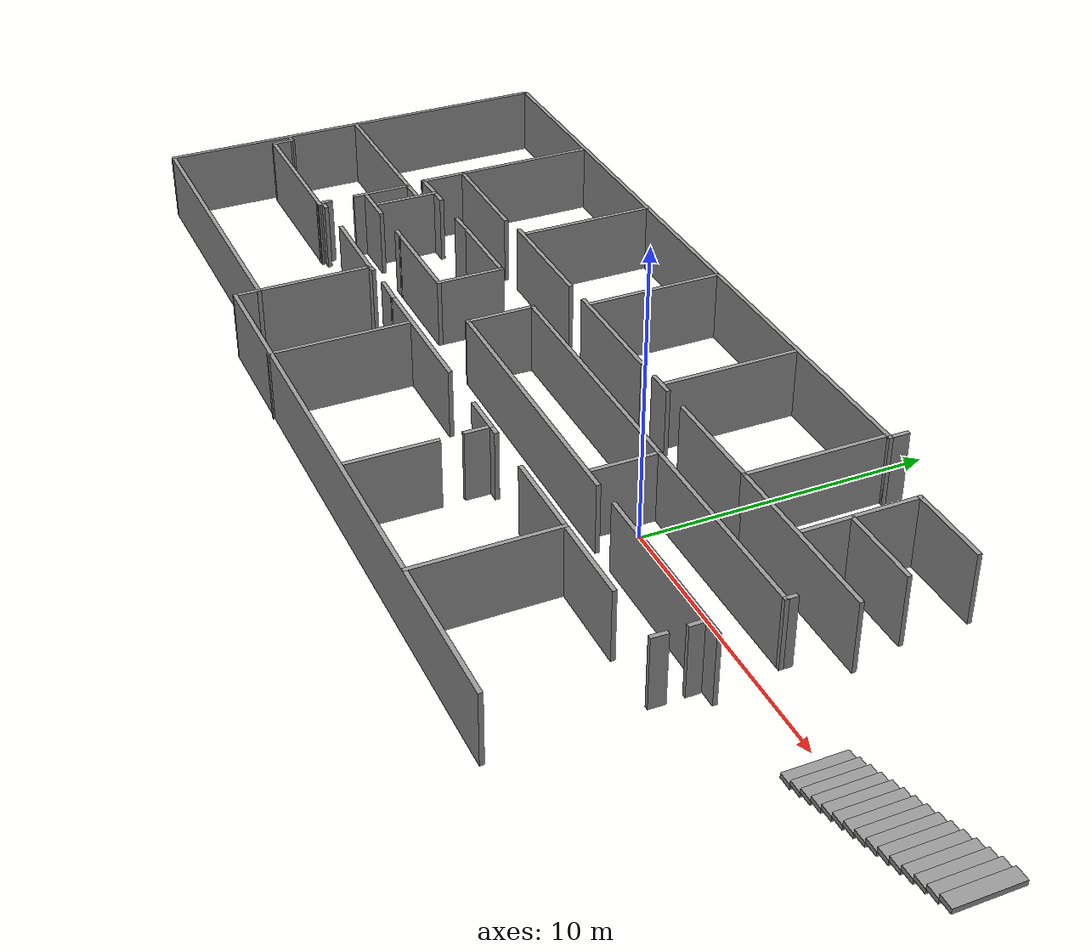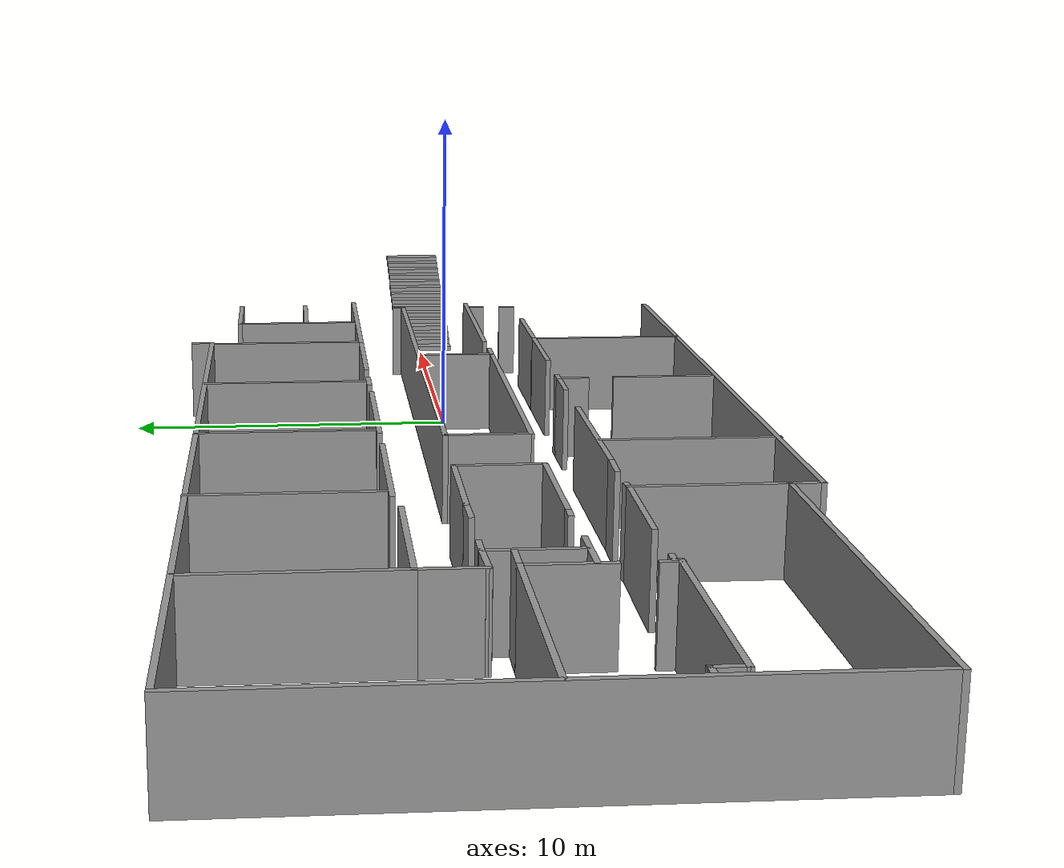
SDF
<sdf version="1.7">
 <model name="5OG_waende">
  <pose>-0.119199 0.062198 0 0 -0 0</pose>
  <link name="Stairs_1">
   <visual name="Stairs_1_Visual_0">
    <pose>10.7982 -0.241611 0.083333 0 -0 1.5708</pose>
    <geometry><box><size>2.07123 0.478437 0.166667</size></box></geometry>
    <material>
     <script><uri>file://media/materials/scripts/gazebo.material</uri><name>Gazebo/Grey</name></script>
     <ambient>1 1 1 1</ambient>
    </material>
    <meta><layer>0</layer></meta>
   </visual>
   <collision name="Stairs_1_Collision_0">
    <geometry><box><size>2.07123 0.478437 0.166667</size></box></geometry>
    <pose>10.7982 -0.241611 0.083333 0 -0 1.5708</pose>
   </collision>
   <visual name="Stairs_1_Visual_1">
    <pose>11.2766 -0.241611 0.25 0 -0 1.5708</pose>
    <geometry><box><size>2.07123 0.478437 0.166667</size></box></geometry>
    <material>
     <script><uri>file://media/materials/scripts/gazebo.material</uri><name>Gazebo/Grey</name></script>
     <ambient>1 1 1 1</ambient>
    </material>
    <meta><layer>0</layer></meta>
   </visual>
   <collision name="Stairs_1_Collision_1">
    <geometry><box><size>2.07123 0.478437 0.166667</size></box></geometry>
    <pose>11.2766 -0.241611 0.25 0 -0 1.5708</pose>
   </collision>
   <visual name="Stairs_1_Visual_2">
    <pose>11.7551 -0.241611 0.416667 0 -0 1.5708</pose>
    <geometry><box><size>2.07123 0.478437 0.166667</size></box></geometry>
    <material>
     <script><uri>file://media/materials/scripts/gazebo.material</uri><name>Gazebo/Grey</name></script>
     <ambient>1 1 1 1</ambient>
    </material>
    <meta><layer>0</layer></meta>
   </visual>
   <collision name="Stairs_1_Collision_2">
    <geometry><box><size>2.07123 0.478437 0.166667</size></box></geometry>
    <pose>11.7551 -0.241611 0.416667 0 -0 1.5708</pose>
   </collision>
   <visual name="Stairs_1_Visual_3">
    <pose>12.2335 -0.241611 0.583333 0 -0 1.5708</pose>
    <geometry><box><size>2.07123 0.478437 0.166667</size></box></geometry>
    <material>
     <script><uri>file://media/materials/scripts/gazebo.material</uri><name>Gazebo/Grey</name></script>
     <ambient>1 1 1 1</ambient>
    </material>
    <meta><layer>0</layer></meta>
   </visual>
   <collision name="Stairs_1_Collision_3">
    <geometry><box><size>2.07123 0.478437 0.166667</size></box></geometry>
    <pose>12.2335 -0.241611 0.583333 0 -0 1.5708</pose>
   </collision>
   <visual name="Stairs_1_Visual_4">
    <pose>12.7119 -0.241611 0.75 0 -0 1.5708</pose>
    <geometry><box><size>2.07123 0.478437 0.166667</size></box></geometry>
    <material>
     <script><uri>file://media/materials/scripts/gazebo.material</uri><name>Gazebo/Grey</name></script>
     <ambient>1 1 1 1</ambient>
    </material>
    <meta><layer>0</layer></meta>
   </visual>
   <collision name="Stairs_1_Collision_4">
    <geometry><box><size>2.07123 0.478437 0.166667</size></box></geometry>
    <pose>12.7119 -0.241611 0.75 0 -0 1.5708</pose>
   </collision>
   <visual name="Stairs_1_Visual_5">
    <pose>13.1904 -0.241611 0.916667 0 -0 1.5708</pose>
    <geometry><box><size>2.07123 0.478437 0.166667</size></box></geometry>
    <material>
     <script><uri>file://media/materials/scripts/gazebo.material</uri><name>Gazebo/Grey</name></script>
     <ambient>1 1 1 1</ambient>
    </material>
    <meta><layer>0</layer></meta>
   </visual>
   <collision name="Stairs_1_Collision_5">
    <geometry><box><size>2.07123 0.478437 0.166667</size></box></geometry>
    <pose>13.1904 -0.241611 0.916667 0 -0 1.5708</pose>
   </collision>
   <visual name="Stairs_1_Visual_6">
    <pose>13.6688 -0.24161 1.08333 0 -0 1.5708</pose>
    <geometry><box><size>2.07123 0.478437 0.166667</size></box></geometry>
    <material>
     <script><uri>file://media/materials/scripts/gazebo.material</uri><name>Gazebo/Grey</name></script>
     <ambient>1 1 1 1</ambient>
    </material>
    <meta><layer>0</layer></meta>
   </visual>
   <collision name="Stairs_1_Collision_6">
    <geometry><box><size>2.07123 0.478437 0.166667</size></box></geometry>
    <pose>13.6688 -0.24161 1.08333 0 -0 1.5708</pose>
   </collision>
   <visual name="Stairs_1_Visual_7">
    <pose>14.1472 -0.24161 1.25 0 -0 1.5708</pose>
    <geometry><box><size>2.07123 0.478437 0.166667</size></box></geometry>
    <material>
     <script><uri>file://media/materials/scripts/gazebo.material</uri><name>Gazebo/Grey</name></script>
     <ambient>1 1 1 1</ambient>
    </material>
    <meta><layer>0</layer></meta>
   </visual>
   <collision name="Stairs_1_Collision_7">
    <geometry><box><size>2.07123 0.478437 0.166667</size></box></geometry>
    <pose>14.1472 -0.24161 1.25 0 -0 1.5708</pose>
   </collision>
   <visual name="Stairs_1_Visual_8">
    <pose>14.6257 -0.24161 1.41667 0 -0 1.5708</pose>
    <geometry><box><size>2.07123 0.478437 0.166667</size></box></geometry>
    <material>
     <script><uri>file://media/materials/scripts/gazebo.material</uri><name>Gazebo/Grey</name></script>
     <ambient>1 1 1 1</ambient>
    </material>
    <meta><layer>0</layer></meta>
   </visual>
   <collision name="Stairs_1_Collision_8">
    <geometry><box><size>2.07123 0.478437 0.166667</size></box></geometry>
    <pose>14.6257 -0.24161 1.41667 0 -0 1.5708</pose>
   </collision>
   <visual name="Stairs_1_Visual_9">
    <pose>15.1041 -0.24161 1.58333 0 -0 1.5708</pose>
    <geometry><box><size>2.07123 0.478437 0.166667</size></box></geometry>
    <material>
     <script><uri>file://media/materials/scripts/gazebo.material</uri><name>Gazebo/Grey</name></script>
     <ambient>1 1 1 1</ambient>
    </material>
    <meta><layer>0</layer></meta>
   </visual>
   <collision name="Stairs_1_Collision_9">
    <geometry><box><size>2.07123 0.478437 0.166667</size></box></geometry>
    <pose>15.1041 -0.24161 1.58333 0 -0 1.5708</pose>
   </collision>
   <visual name="Stairs_1_Visual_10">
    <pose>15.5826 -0.24161 1.75 0 -0 1.5708</pose>
    <geometry><box><size>2.07123 0.478437 0.166667</size></box></geometry>
    <material>
     <script><uri>file://media/materials/scripts/gazebo.material</uri><name>Gazebo/Grey</name></script>
     <ambient>1 1 1 1</ambient>
    </material>
    <meta><layer>0</layer></meta>
   </visual>
   <collision name="Stairs_1_Collision_10">
    <geometry><box><size>2.07123 0.478437 0.166667</size></box></geometry>
    <pose>15.5826 -0.24161 1.75 0 -0 1.5708</pose>
   </collision>
   <visual name="Stairs_1_Visual_11">
    <pose>16.061 -0.24161 1.91667 0 -0 1.5708</pose>
    <geometry><box><size>2.07123 0.478437 0.166667</size></box></geometry>
    <material>
     <script><uri>file://media/materials/scripts/gazebo.material</uri><name>Gazebo/Grey</name></script>
     <ambient>1 1 1 1</ambient>
    </material>
    <meta><layer>0</layer></meta>
   </visual>
   <collision name="Stairs_1_Collision_11">
    <geometry><box><size>2.07123 0.478437 0.166667</size></box></geometry>
    <pose>16.061 -0.24161 1.91667 0 -0 1.5708</pose>
   </collision>
   <visual name="Stairs_1_Visual_12">
    <pose>16.5394 -0.24161 2.08333 0 -0 1.5708</pose>
    <geometry><box><size>2.07123 0.478437 0.166667</size></box></geometry>
    <material>
     <script><uri>file://media/materials/scripts/gazebo.material</uri><name>Gazebo/Grey</name></script>
     <ambient>1 1 1 1</ambient>
    </material>
    <meta><layer>0</layer></meta>
   </visual>
   <collision name="Stairs_1_Collision_12">
    <geometry><box><size>2.07123 0.478437 0.166667</size></box></geometry>
    <pose>16.5394 -0.24161 2.08333 0 -0 1.5708</pose>
   </collision>
   <visual name="Stairs_1_Visual_13">
    <pose>17.0179 -0.24161 2.25 0 -0 1.5708</pose>
    <geometry><box><size>2.07123 0.478437 0.166667</size></box></geometry>
    <material>
     <script><uri>file://media/materials/scripts/gazebo.material</uri><name>Gazebo/Grey</name></script>
     <ambient>1 1 1 1</ambient>
    </material>
    <meta><layer>0</layer></meta>
   </visual>
   <collision name="Stairs_1_Collision_13">
    <geometry><box><size>2.07123 0.478437 0.166667</size></box></geometry>
    <pose>17.0179 -0.24161 2.25 0 -0 1.5708</pose>
   </collision>
   <visual name="Stairs_1_Visual_14">
    <pose>17.4963 -0.24161 2.41667 0 -0 1.5708</pose>
    <geometry><box><size>2.07123 0.478437 0.166667</size></box></geometry>
    <material>
     <script><uri>file://media/materials/scripts/gazebo.material</uri><name>Gazebo/Grey</name></script>
     <ambient>1 1 1 1</ambient>
    </material>
    <meta><layer>0</layer></meta>
   </visual>
   <collision name="Stairs_1_Collision_14">
    <geometry><box><size>2.07123 0.478437 0.166667</size></box></geometry>
    <pose>17.4963 -0.24161 2.41667 0 -0 1.5708</pose>
   </collision>
  </link>
  <link name="Wall_0">
   <collision name="Wall_0_Collision">
    <geometry><box><size>5 0.15 2.5</size></box></geometry>
    <pose>0 0 1.25 0 -0 0</pose>
   </collision>
   <visual name="Wall_0_Visual">
    <pose>0 0 1.25 0 -0 0</pose>
    <geometry><box><size>5 0.15 2.5</size></box></geometry>
    <material>
     <script><uri>file://media/materials/scripts/gazebo.material</uri><name>Gazebo/Grey</name></script>
     <ambient>1 1 1 1</ambient>
    </material>
    <meta><layer>0</layer></meta>
   </visual>
   <pose>-14.6424 -5.68764 0 0 -0 -1.5708</pose>
  </link>
  <link name="Wall_1">
   <collision name="Wall_1_Collision">
    <geometry><box><size>21.75 0.15 2.5</size></box></geometry>
    <pose>0 0 1.25 0 -0 0</pose>
   </collision>
   <visual name="Wall_1_Visual">
    <pose>0 0 1.25 0 -0 0</pose>
    <geometry><box><size>21.75 0.15 2.5</size></box></geometry>
    <material>
     <script><uri>file://media/materials/scripts/gazebo.material</uri><name>Gazebo/Grey</name></script>
     <ambient>1 1 1 1</ambient>
    </material>
    <meta><layer>0</layer></meta>
   </visual>
   <pose>-3.84243 -8.11264 0 0 -0 0</pose>
  </link>
  <link name="Wall_100">
   <collision name="Wall_100_Collision">
    <geometry><box><size>5 0.15 2.5</size></box></geometry>
    <pose>0 0 1.25 0 -0 0</pose>
   </collision>
   <visual name="Wall_100_Visual">
    <pose>0 0 1.25 0 -0 0</pose>
    <geometry><box><size>5 0.15 2.5</size></box></geometry>
    <material>
     <script><uri>file://media/materials/scripts/gazebo.material</uri><name>Gazebo/Grey</name></script>
     <ambient>1 1 1 1</ambient>
    </material>
    <meta><layer>0</layer></meta>
   </visual>
   <pose>-14.6211 5.15402 0 0 -0 -1.5708</pose>
  </link>
  <link name="Wall_102">
   <collision name="Wall_102_Collision">
    <geometry><box><size>5 0.15 2.5</size></box></geometry>
    <pose>0 0 1.25 0 -0 0</pose>
   </collision>
   <visual name="Wall_102_Visual">
    <pose>0 0 1.25 0 -0 0</pose>
    <geometry><box><size>5 0.15 2.5</size></box></geometry>
    <material>
     <script><uri>file://media/materials/scripts/gazebo.material</uri><name>Gazebo/Grey</name></script>
     <ambient>1 1 1 1</ambient>
    </material>
    <meta><layer>0</layer></meta>
   </visual>
   <pose>-9.21664 5.13653 0 0 -0 -1.5708</pose>
  </link>
  <link name="Wall_104">
   <collision name="Wall_104_Collision">
    <geometry><box><size>5 0.15 2.5</size></box></geometry>
    <pose>0 0 1.25 0 -0 0</pose>
   </collision>
   <visual name="Wall_104_Visual">
    <pose>0 0 1.25 0 -0 0</pose>
    <geometry><box><size>5 0.15 2.5</size></box></geometry>
    <material>
     <script><uri>file://media/materials/scripts/gazebo.material</uri><name>Gazebo/Grey</name></script>
     <ambient>1 1 1 1</ambient>
    </material>
    <meta><layer>0</layer></meta>
   </visual>
   <pose>-3.81222 5.10155 0 0 -0 -1.5708</pose>
  </link>
  <link name="Wall_106">
   <collision name="Wall_106_Collision">
    <geometry><box><size>3.25 0.15 2.5</size></box></geometry>
    <pose>0 0 1.25 0 -0 0</pose>
   </collision>
   <visual name="Wall_106_Visual">
    <pose>0 0 1.25 0 -0 0</pose>
    <geometry><box><size>3.25 0.15 2.5</size></box></geometry>
    <material>
     <script><uri>file://media/materials/scripts/gazebo.material</uri><name>Gazebo/Grey</name></script>
     <ambient>1 1 1 1</ambient>
    </material>
    <meta><layer>0</layer></meta>
   </visual>
   <pose>-14.1887 0.863741 0 0 -0 0</pose>
  </link>
  <link name="Wall_107">
   <collision name="Wall_107_Collision">
    <geometry><box><size>2.5 0.15 2.5</size></box></geometry>
    <pose>0 0 1.25 0 -0 0</pose>
   </collision>
   <visual name="Wall_107_Visual">
    <pose>0 0 1.25 0 -0 0</pose>
    <geometry><box><size>2.5 0.15 2.5</size></box></geometry>
    <material>
     <script><uri>file://media/materials/scripts/gazebo.material</uri><name>Gazebo/Grey</name></script>
     <ambient>1 1 1 1</ambient>
    </material>
    <meta><layer>0</layer></meta>
   </visual>
   <pose>-12.6387 -0.311259 0 0 -0 -1.5708</pose>
  </link>
  <link name="Wall_108">
   <collision name="Wall_108_Collision">
    <geometry><box><size>3.75 0.15 2.5</size></box></geometry>
    <pose>0 0 1.25 0 -0 0</pose>
   </collision>
   <visual name="Wall_108_Visual">
    <pose>0 0 1.25 0 -0 0</pose>
    <geometry><box><size>3.75 0.15 2.5</size></box></geometry>
    <material>
     <script><uri>file://media/materials/scripts/gazebo.material</uri><name>Gazebo/Grey</name></script>
     <ambient>1 1 1 1</ambient>
    </material>
    <meta><layer>0</layer></meta>
   </visual>
   <pose>-14.4387 -1.48626 0 0 -0 3.14159</pose>
  </link>
  <link name="Wall_110">
   <collision name="Wall_110_Collision">
    <geometry><box><size>3.28022 0.15 2.5</size></box></geometry>
    <pose>0 0 1.25 0 -0 0</pose>
   </collision>
   <visual name="Wall_110_Visual">
    <pose>0 0 1.25 0 -0 0</pose>
    <geometry><box><size>3.28022 0.15 2.5</size></box></geometry>
    <material>
     <script><uri>file://media/materials/scripts/gazebo.material</uri><name>Gazebo/Grey</name></script>
     <ambient>1 1 1 1</ambient>
    </material>
    <meta><layer>0</layer></meta>
   </visual>
   <pose>-16.2074 -3.23981 0 0 -0 -0.014586</pose>
  </link>
  <link name="Wall_112">
   <collision name="Wall_112_Collision">
    <geometry><box><size>1.17054 0.15 2.5</size></box></geometry>
    <pose>0 0 1.25 0 -0 0</pose>
   </collision>
   <visual name="Wall_112_Visual">
    <pose>0 0 1.25 0 -0 0</pose>
    <geometry><box><size>1.17054 0.15 2.5</size></box></geometry>
    <material>
     <script><uri>file://media/materials/scripts/gazebo.material</uri><name>Gazebo/Grey</name></script>
     <ambient>1 1 1 1</ambient>
    </material>
    <meta><layer>0</layer></meta>
   </visual>
   <pose>-12.8612 -3.2242 0 0 -0 -0.031116</pose>
  </link>
  <link name="Wall_114">
   <collision name="Wall_114_Collision">
    <geometry><box><size>0.382389 0.15 2.5</size></box></geometry>
    <pose>0 0 1.25 0 -0 0</pose>
   </collision>
   <visual name="Wall_114_Visual">
    <pose>0 0 1.25 0 -0 0</pose>
    <geometry><box><size>0.382389 0.15 2.5</size></box></geometry>
    <material>
     <script><uri>file://media/materials/scripts/gazebo.material</uri><name>Gazebo/Grey</name></script>
     <ambient>1 1 1 1</ambient>
    </material>
    <meta><layer>0</layer></meta>
   </visual>
   <pose>-14.5273 -3.24705 0 0 -0 -3.007</pose>
  </link>
  <link name="Wall_120">
   <collision name="Wall_120_Collision">
    <geometry><box><size>0.5 0.15 2.5</size></box></geometry>
    <pose>0 0 1.25 0 -0 0</pose>
   </collision>
   <visual name="Wall_120_Visual">
    <pose>0 0 1.25 0 -0 0</pose>
    <geometry><box><size>0.5 0.15 2.5</size></box></geometry>
    <material>
     <script><uri>file://media/materials/scripts/gazebo.material</uri><name>Gazebo/Grey</name></script>
     <ambient>1 1 1 1</ambient>
    </material>
    <meta><layer>0</layer></meta>
   </visual>
   <pose>-25.5475 -2.63736 0 0 -0 0</pose>
  </link>
  <link name="Wall_121">
   <collision name="Wall_121_Collision">
    <geometry><box><size>0.880662 0.15 2.5</size></box></geometry>
    <pose>0 0 1.25 0 -0 0</pose>
   </collision>
   <visual name="Wall_121_Visual">
    <pose>0 0 1.25 0 -0 0</pose>
    <geometry><box><size>0.880662 0.15 2.5</size></box></geometry>
    <material>
     <script><uri>file://media/materials/scripts/gazebo.material</uri><name>Gazebo/Grey</name></script>
     <ambient>1 1 1 1</ambient>
    </material>
    <meta><layer>0</layer></meta>
   </visual>
   <pose>-25.3726 -3.00237 0 0 -0 -1.57107</pose>
  </link>
  <link name="Wall_122">
   <collision name="Wall_122_Collision">
    <geometry><box><size>5.75 0.15 2.5</size></box></geometry>
    <pose>0 0 1.25 0 -0 0</pose>
   </collision>
   <visual name="Wall_122_Visual">
    <pose>0 0 1.25 0 -0 0</pose>
    <geometry><box><size>5.75 0.15 2.5</size></box></geometry>
    <material>
     <script><uri>file://media/materials/scripts/gazebo.material</uri><name>Gazebo/Grey</name></script>
     <ambient>1 1 1 1</ambient>
    </material>
    <meta><layer>0</layer></meta>
   </visual>
   <pose>-22.5727 -3.36738 0 0 -0 0</pose>
  </link>
  <link name="Wall_123">
   <collision name="Wall_123_Collision">
    <geometry><box><size>0.287406 0.15 2.5</size></box></geometry>
    <pose>0 0 1.25 0 -0 0</pose>
   </collision>
   <visual name="Wall_123_Visual">
    <pose>0 0 1.25 0 -0 0</pose>
    <geometry><box><size>0.287406 0.15 2.5</size></box></geometry>
    <material>
     <script><uri>file://media/materials/scripts/gazebo.material</uri><name>Gazebo/Grey</name></script>
     <ambient>1 1 1 1</ambient>
    </material>
    <meta><layer>0</layer></meta>
   </visual>
   <pose>-19.7667 -3.29894 0 0 -0 1.48314</pose>
  </link>
  <link name="Wall_124">
   <collision name="Wall_124_Collision">
    <geometry><box><size>0.408549 0.15 2.5</size></box></geometry>
    <pose>0 0 1.25 0 -0 0</pose>
   </collision>
   <visual name="Wall_124_Visual">
    <pose>0 0 1.25 0 -0 0</pose>
    <geometry><box><size>0.408549 0.15 2.5</size></box></geometry>
    <material>
     <script><uri>file://media/materials/scripts/gazebo.material</uri><name>Gazebo/Grey</name></script>
     <ambient>1 1 1 1</ambient>
    </material>
    <meta><layer>0</layer></meta>
   </visual>
   <pose>-19.6314 -3.2305 0 0 -0 0</pose>
  </link>
  <link name="Wall_127">
   <collision name="Wall_127_Collision">
    <geometry><box><size>0.591054 0.15 2.5</size></box></geometry>
    <pose>0 0 1.25 0 -0 0</pose>
   </collision>
   <visual name="Wall_127_Visual">
    <pose>0 0 1.25 0 -0 0</pose>
    <geometry><box><size>0.591054 0.15 2.5</size></box></geometry>
    <material>
     <script><uri>file://media/materials/scripts/gazebo.material</uri><name>Gazebo/Grey</name></script>
     <ambient>1 1 1 1</ambient>
    </material>
    <meta><layer>0</layer></meta>
   </visual>
   <pose>-19.8823 -3.16206 0 0 -0 -1.5708</pose>
  </link>
  <link name="Wall_129">
   <collision name="Wall_129_Collision">
    <geometry><box><size>6 0.15 2.5</size></box></geometry>
    <pose>0 0 1.25 0 -0 0</pose>
   </collision>
   <visual name="Wall_129_Visual">
    <pose>0 0 1.25 0 -0 0</pose>
    <geometry><box><size>6 0.15 2.5</size></box></geometry>
    <material>
     <script><uri>file://media/materials/scripts/gazebo.material</uri><name>Gazebo/Grey</name></script>
     <ambient>1 1 1 1</ambient>
    </material>
    <meta><layer>0</layer></meta>
   </visual>
   <pose>-22.7975 0.145843 0 0 -0 0</pose>
  </link>
  <link name="Wall_130">
   <collision name="Wall_130_Collision">
    <geometry><box><size>2.25 0.15 2.5</size></box></geometry>
    <pose>0 0 1.25 0 -0 0</pose>
   </collision>
   <visual name="Wall_130_Visual">
    <pose>0 0 1.25 0 -0 0</pose>
    <geometry><box><size>2.25 0.15 2.5</size></box></geometry>
    <material>
     <script><uri>file://media/materials/scripts/gazebo.material</uri><name>Gazebo/Grey</name></script>
     <ambient>1 1 1 1</ambient>
    </material>
    <meta><layer>0</layer></meta>
   </visual>
   <pose>-19.8725 -0.904157 0 0 -0 -1.5708</pose>
  </link>
  <link name="Wall_132">
   <collision name="Wall_132_Collision">
    <geometry><box><size>1.75 0.15 2.5</size></box></geometry>
    <pose>0 0 1.25 0 -0 0</pose>
   </collision>
   <visual name="Wall_132_Visual">
    <pose>0 0 1.25 0 -0 0</pose>
    <geometry><box><size>1.75 0.15 2.5</size></box></geometry>
    <material>
     <script><uri>file://media/materials/scripts/gazebo.material</uri><name>Gazebo/Grey</name></script>
     <ambient>1 1 1 1</ambient>
    </material>
    <meta><layer>0</layer></meta>
   </visual>
   <pose>-19.0215 -1.54233 0 0 -0 0</pose>
  </link>
  <link name="Wall_134">
   <collision name="Wall_134_Collision">
    <geometry><box><size>2.5 0.15 2.5</size></box></geometry>
    <pose>0 0 1.25 0 -0 0</pose>
   </collision>
   <visual name="Wall_134_Visual">
    <pose>0 0 1.25 0 -0 0</pose>
    <geometry><box><size>2.5 0.15 2.5</size></box></geometry>
    <material>
     <script><uri>file://media/materials/scripts/gazebo.material</uri><name>Gazebo/Grey</name></script>
     <ambient>1 1 1 1</ambient>
    </material>
    <meta><layer>0</layer></meta>
   </visual>
   <pose>-18.9242 -0.314346 0 0 -0 -1.5708</pose>
  </link>
  <link name="Wall_136">
   <collision name="Wall_136_Collision">
    <geometry><box><size>1 0.15 2.5</size></box></geometry>
    <pose>0 0 1.25 0 -0 0</pose>
   </collision>
   <visual name="Wall_136_Visual">
    <pose>0 0 1.25 0 -0 0</pose>
    <geometry><box><size>1 0.15 2.5</size></box></geometry>
    <material>
     <script><uri>file://media/materials/scripts/gazebo.material</uri><name>Gazebo/Grey</name></script>
     <ambient>1 1 1 1</ambient>
    </material>
    <meta><layer>0</layer></meta>
   </visual>
   <pose>-19.4475 0.145843 0 0 -0 0</pose>
  </link>
  <link name="Wall_138">
   <collision name="Wall_138_Collision">
    <geometry><box><size>1.75 0.15 2.5</size></box></geometry>
    <pose>0 0 1.25 0 -0 0</pose>
   </collision>
   <visual name="Wall_138_Visual">
    <pose>0 0 1.25 0 -0 0</pose>
    <geometry><box><size>1.75 0.15 2.5</size></box></geometry>
    <material>
     <script><uri>file://media/materials/scripts/gazebo.material</uri><name>Gazebo/Grey</name></script>
     <ambient>1 1 1 1</ambient>
    </material>
    <meta><layer>0</layer></meta>
   </visual>
   <pose>-19.9838 1.61992 0 0 -0 -1.5708</pose>
  </link>
  <link name="Wall_139">
   <collision name="Wall_139_Collision">
    <geometry><box><size>1.21043 0.15 2.5</size></box></geometry>
    <pose>0 0 1.25 0 -0 0</pose>
   </collision>
   <visual name="Wall_139_Visual">
    <pose>0 0 1.25 0 -0 0</pose>
    <geometry><box><size>1.21043 0.15 2.5</size></box></geometry>
    <material>
     <script><uri>file://media/materials/scripts/gazebo.material</uri><name>Gazebo/Grey</name></script>
     <ambient>1 1 1 1</ambient>
    </material>
    <meta><layer>0</layer></meta>
   </visual>
   <pose>-19.454 0.840288 0 0 -0 0.038421</pose>
  </link>
  <link name="Wall_141">
   <collision name="Wall_141_Collision">
    <geometry><box><size>0.584617 0.15 2.5</size></box></geometry>
    <pose>0 0 1.25 0 -0 0</pose>
   </collision>
   <visual name="Wall_141_Visual">
    <pose>0 0 1.25 0 -0 0</pose>
    <geometry><box><size>0.584617 0.15 2.5</size></box></geometry>
    <material>
     <script><uri>file://media/materials/scripts/gazebo.material</uri><name>Gazebo/Grey</name></script>
     <ambient>1 1 1 1</ambient>
    </material>
    <meta><layer>0</layer></meta>
   </visual>
   <pose>-16.456 -1.48388 0 0 -0 -0.010965</pose>
  </link>
  <link name="Wall_143">
   <collision name="Wall_143_Collision">
    <geometry><box><size>1.08477 0.15 2.5</size></box></geometry>
    <pose>0 0 1.25 0 -0 0</pose>
   </collision>
   <visual name="Wall_143_Visual">
    <pose>0 0 1.25 0 -0 0</pose>
    <geometry><box><size>1.08477 0.15 2.5</size></box></geometry>
    <material>
     <script><uri>file://media/materials/scripts/gazebo.material</uri><name>Gazebo/Grey</name></script>
     <ambient>1 1 1 1</ambient>
    </material>
    <meta><layer>0</layer></meta>
   </visual>
   <pose>-16.206 0.854593 0 0 -0 0.019574</pose>
  </link>
  <link name="Wall_145">
   <collision name="Wall_145_Collision">
    <geometry><box><size>0.75 0.15 2.5</size></box></geometry>
    <pose>0 0 1.25 0 -0 0</pose>
   </collision>
   <visual name="Wall_145_Visual">
    <pose>0 0 1.25 0 -0 0</pose>
    <geometry><box><size>0.75 0.15 2.5</size></box></geometry>
    <material>
     <script><uri>file://media/materials/scripts/gazebo.material</uri><name>Gazebo/Grey</name></script>
     <ambient>1 1 1 1</ambient>
    </material>
    <meta><layer>0</layer></meta>
   </visual>
   <pose>-18.6242 0.860654 0 0 -0 0</pose>
  </link>
  <link name="Wall_147">
   <collision name="Wall_147_Collision">
    <geometry><box><size>1.5 0.15 2.5</size></box></geometry>
    <pose>0 0 1.25 0 -0 0</pose>
   </collision>
   <visual name="Wall_147_Visual">
    <pose>0 0 1.25 0 -0 0</pose>
    <geometry><box><size>1.5 0.15 2.5</size></box></geometry>
    <material>
     <script><uri>file://media/materials/scripts/gazebo.material</uri><name>Gazebo/Grey</name></script>
     <ambient>1 1 1 1</ambient>
    </material>
    <meta><layer>0</layer></meta>
   </visual>
   <pose>-4.52248 -3.2264 0 0 -0 0</pose>
  </link>
  <link name="Wall_148">
   <collision name="Wall_148_Collision">
    <geometry><box><size>1 0.15 2.5</size></box></geometry>
    <pose>0 0 1.25 0 -0 0</pose>
   </collision>
   <visual name="Wall_148_Visual">
    <pose>0 0 1.25 0 -0 0</pose>
    <geometry><box><size>1 0.15 2.5</size></box></geometry>
    <material>
     <script><uri>file://media/materials/scripts/gazebo.material</uri><name>Gazebo/Grey</name></script>
     <ambient>1 1 1 1</ambient>
    </material>
    <meta><layer>0</layer></meta>
   </visual>
   <pose>-3.84748 -3.6514 0 0 -0 -1.5708</pose>
  </link>
  <link name="Wall_150">
   <collision name="Wall_150_Collision">
    <geometry><box><size>3.25 0.15 2.5</size></box></geometry>
    <pose>0 0 1.25 0 -0 0</pose>
   </collision>
   <visual name="Wall_150_Visual">
    <pose>0 0 1.25 0 -0 0</pose>
    <geometry><box><size>3.25 0.15 2.5</size></box></geometry>
    <material>
     <script><uri>file://media/materials/scripts/gazebo.material</uri><name>Gazebo/Grey</name></script>
     <ambient>1 1 1 1</ambient>
    </material>
    <meta><layer>0</layer></meta>
   </visual>
   <pose>-3.81348 -6.5432 0 0 -0 1.5708</pose>
  </link>
  <link name="Wall_152">
   <collision name="Wall_152_Collision">
    <geometry><box><size>0.5 0.15 2.5</size></box></geometry>
    <pose>0 0 1.25 0 -0 0</pose>
   </collision>
   <visual name="Wall_152_Visual">
    <pose>0 0 1.25 0 -0 0</pose>
    <geometry><box><size>0.5 0.15 2.5</size></box></geometry>
    <material>
     <script><uri>file://media/materials/scripts/gazebo.material</uri><name>Gazebo/Grey</name></script>
     <ambient>1 1 1 1</ambient>
    </material>
    <meta><layer>0</layer></meta>
   </visual>
   <pose>-3.67247 -3.2264 0 0 -0 0</pose>
  </link>
  <link name="Wall_154">
   <collision name="Wall_154_Collision">
    <geometry><box><size>5 0.15 2.5</size></box></geometry>
    <pose>0 0 1.25 0 -0 0</pose>
   </collision>
   <visual name="Wall_154_Visual">
    <pose>0 0 1.25 0 -0 0</pose>
    <geometry><box><size>5 0.15 2.5</size></box></geometry>
    <material>
     <script><uri>file://media/materials/scripts/gazebo.material</uri><name>Gazebo/Grey</name></script>
     <ambient>1 1 1 1</ambient>
    </material>
    <meta><layer>0</layer></meta>
   </visual>
   <pose>1.60084 -5.6682 0 0 -0 1.5708</pose>
  </link>
  <link name="Wall_155">
   <collision name="Wall_155_Collision">
    <geometry><box><size>3.25 0.15 2.5</size></box></geometry>
    <pose>0 0 1.25 0 -0 0</pose>
   </collision>
   <visual name="Wall_155_Visual">
    <pose>0 0 1.25 0 -0 0</pose>
    <geometry><box><size>3.25 0.15 2.5</size></box></geometry>
    <material>
     <script><uri>file://media/materials/scripts/gazebo.material</uri><name>Gazebo/Grey</name></script>
     <ambient>1 1 1 1</ambient>
    </material>
    <meta><layer>0</layer></meta>
   </visual>
   <pose>0.050837 -3.2432 0 0 -0 3.14159</pose>
  </link>
  <link name="Wall_157">
   <collision name="Wall_157_Collision">
    <geometry><box><size>3.25 0.15 2.5</size></box></geometry>
    <pose>0 0 1.25 0 -0 0</pose>
   </collision>
   <visual name="Wall_157_Visual">
    <pose>0 0 1.25 0 -0 0</pose>
    <geometry><box><size>3.25 0.15 2.5</size></box></geometry>
    <material>
     <script><uri>file://media/materials/scripts/gazebo.material</uri><name>Gazebo/Grey</name></script>
     <ambient>1 1 1 1</ambient>
    </material>
    <meta><layer>0</layer></meta>
   </visual>
   <pose>3.15084 -3.2432 0 0 -0 0</pose>
  </link>
  <link name="Wall_165">
   <collision name="Wall_165_Collision">
    <geometry><box><size>0.560918 0.15 2.5</size></box></geometry>
    <pose>0 0 1.25 0 -0 0</pose>
   </collision>
   <visual name="Wall_165_Visual">
    <pose>0 0 1.25 0 -0 0</pose>
    <geometry><box><size>0.560918 0.15 2.5</size></box></geometry>
    <material>
     <script><uri>file://media/materials/scripts/gazebo.material</uri><name>Gazebo/Grey</name></script>
     <ambient>1 1 1 1</ambient>
    </material>
    <meta><layer>0</layer></meta>
   </visual>
   <pose>6.85546 -2.97545 0 0 -0 -1.60782</pose>
  </link>
  <link name="Wall_167">
   <collision name="Wall_167_Collision">
    <geometry><box><size>0.5 0.15 2.5</size></box></geometry>
    <pose>0 0 1.25 0 -0 0</pose>
   </collision>
   <visual name="Wall_167_Visual">
    <pose>0 0 1.25 0 -0 0</pose>
    <geometry><box><size>0.5 0.15 2.5</size></box></geometry>
    <material>
     <script><uri>file://media/materials/scripts/gazebo.material</uri><name>Gazebo/Grey</name></script>
     <ambient>1 1 1 1</ambient>
    </material>
    <meta><layer>0</layer></meta>
   </visual>
   <pose>6.84786 -1.86511 0 0 -0 1.5708</pose>
  </link>
  <link name="Wall_194">
   <collision name="Wall_194_Collision">
    <geometry><box><size>4.25 0.15 2.5</size></box></geometry>
    <pose>0 0 1.25 0 -0 0</pose>
   </collision>
   <visual name="Wall_194_Visual">
    <pose>0 0 1.25 0 -0 0</pose>
    <geometry><box><size>4.25 0.15 2.5</size></box></geometry>
    <material>
     <script><uri>file://media/materials/scripts/gazebo.material</uri><name>Gazebo/Grey</name></script>
     <ambient>1 1 1 1</ambient>
    </material>
    <meta><layer>0</layer></meta>
   </visual>
   <pose>4.54735 4.65508 0 0 -0 -1.5708</pose>
  </link>
  <link name="Wall_196">
   <collision name="Wall_196_Collision">
    <geometry><box><size>3 0.15 2.5</size></box></geometry>
    <pose>0 0 1.25 0 -0 0</pose>
   </collision>
   <visual name="Wall_196_Visual">
    <pose>0 0 1.25 0 -0 0</pose>
    <geometry><box><size>3 0.15 2.5</size></box></geometry>
    <material>
     <script><uri>file://media/materials/scripts/gazebo.material</uri><name>Gazebo/Grey</name></script>
     <ambient>1 1 1 1</ambient>
    </material>
    <meta><layer>0</layer></meta>
   </visual>
   <pose>5.97235 6.70508 0 0 -0 0</pose>
  </link>
  <link name="Wall_201">
   <collision name="Wall_201_Collision">
    <geometry><box><size>3 0.15 2.5</size></box></geometry>
    <pose>0 0 1.25 0 -0 0</pose>
   </collision>
   <visual name="Wall_201_Visual">
    <pose>0 0 1.25 0 -0 0</pose>
    <geometry><box><size>3 0.15 2.5</size></box></geometry>
    <material>
     <script><uri>file://media/materials/scripts/gazebo.material</uri><name>Gazebo/Grey</name></script>
     <ambient>1 1 1 1</ambient>
    </material>
    <meta><layer>0</layer></meta>
   </visual>
   <pose>5.99548 4.39202 0 0 -0 0</pose>
  </link>
  <link name="Wall_61">
   <collision name="Wall_61_Collision">
    <geometry><box><size>5 0.15 2.5</size></box></geometry>
    <pose>0 0 1.25 0 -0 0</pose>
   </collision>
   <visual name="Wall_61_Visual">
    <pose>0 0 1.25 0 -0 0</pose>
    <geometry><box><size>5 0.15 2.5</size></box></geometry>
    <material>
     <script><uri>file://media/materials/scripts/gazebo.material</uri><name>Gazebo/Grey</name></script>
     <ambient>1 1 1 1</ambient>
    </material>
    <meta><layer>0</layer></meta>
   </visual>
   <pose>-10.5923 -5.7401 0 0 -0 1.5708</pose>
  </link>
  <link name="Wall_63">
   <collision name="Wall_63_Collision">
    <geometry><box><size>5.25 0.15 2.5</size></box></geometry>
    <pose>0 0 1.25 0 -0 0</pose>
   </collision>
   <visual name="Wall_63_Visual">
    <pose>0 0 1.25 0 -0 0</pose>
    <geometry><box><size>5.25 0.15 2.5</size></box></geometry>
    <material>
     <script><uri>file://media/materials/scripts/gazebo.material</uri><name>Gazebo/Grey</name></script>
     <ambient>1 1 1 1</ambient>
    </material>
    <meta><layer>0</layer></meta>
   </visual>
   <pose>-9.80121 -3.24007 0 0 -0 0</pose>
  </link>
  <link name="Wall_65">
   <collision name="Wall_65_Collision">
    <geometry><box><size>11.25 0.15 2.5</size></box></geometry>
    <pose>0 0 1.25 0 -0 0</pose>
   </collision>
   <visual name="Wall_65_Visual">
    <pose>0 0 1.25 0 -0 0</pose>
    <geometry><box><size>11.25 0.15 2.5</size></box></geometry>
    <material>
     <script><uri>file://media/materials/scripts/gazebo.material</uri><name>Gazebo/Grey</name></script>
     <ambient>1 1 1 1</ambient>
    </material>
    <meta><layer>0</layer></meta>
   </visual>
   <pose>-20.1878 -7.28563 0 0 -0 3.14159</pose>
  </link>
  <link name="Wall_66">
   <collision name="Wall_66_Collision">
    <geometry><box><size>15 0.15 2.5</size></box></geometry>
    <pose>0 0 1.25 0 -0 0</pose>
   </collision>
   <visual name="Wall_66_Visual">
    <pose>0 0 1.25 0 -0 0</pose>
    <geometry><box><size>15 0.15 2.5</size></box></geometry>
    <material>
     <script><uri>file://media/materials/scripts/gazebo.material</uri><name>Gazebo/Grey</name></script>
     <ambient>1 1 1 1</ambient>
    </material>
    <meta><layer>0</layer></meta>
   </visual>
   <pose>-25.7378 0.139368 0 0 -0 1.5708</pose>
  </link>
  <link name="Wall_67">
   <collision name="Wall_67_Collision">
    <geometry><box><size>27.5 0.15 2.5</size></box></geometry>
    <pose>0 0 1.25 0 -0 0</pose>
   </collision>
   <visual name="Wall_67_Visual">
    <pose>0 0 1.25 0 -0 0</pose>
    <geometry><box><size>27.5 0.15 2.5</size></box></geometry>
    <material>
     <script><uri>file://media/materials/scripts/gazebo.material</uri><name>Gazebo/Grey</name></script>
     <ambient>1 1 1 1</ambient>
    </material>
    <meta><layer>0</layer></meta>
   </visual>
   <pose>-12.0628 7.56437 0 0 -0 0</pose>
  </link>
  <link name="Wall_68">
   <collision name="Wall_68_Collision">
    <geometry><box><size>0.75 0.15 2.5</size></box></geometry>
    <pose>0 0 1.25 0 -0 0</pose>
   </collision>
   <visual name="Wall_68_Visual">
    <pose>0 0 1.25 0 -0 0</pose>
    <geometry><box><size>0.75 0.15 2.5</size></box></geometry>
    <material>
     <script><uri>file://media/materials/scripts/gazebo.material</uri><name>Gazebo/Grey</name></script>
     <ambient>1 1 1 1</ambient>
    </material>
    <meta><layer>0</layer></meta>
   </visual>
   <pose>1.61217 7.86437 0 0 -0 1.5708</pose>
  </link>
  <link name="Wall_71">
   <collision name="Wall_71_Collision">
    <geometry><box><size>5.25866 0.15 2.5</size></box></geometry>
    <pose>0 0 1.25 0 -0 0</pose>
   </collision>
   <visual name="Wall_71_Visual">
    <pose>0 0 1.25 0 -0 0</pose>
    <geometry><box><size>5.25866 0.15 2.5</size></box></geometry>
    <material>
     <script><uri>file://media/materials/scripts/gazebo.material</uri><name>Gazebo/Grey</name></script>
     <ambient>1 1 1 1</ambient>
    </material>
    <meta><layer>0</layer></meta>
   </visual>
   <pose>-19.9838 4.97421 0 0 -0 -1.5708</pose>
  </link>
  <link name="Wall_72">
   <collision name="Wall_72_Collision">
    <geometry><box><size>4.25 0.15 2.5</size></box></geometry>
    <pose>0 0 1.25 0 -0 0</pose>
   </collision>
   <visual name="Wall_72_Visual">
    <pose>0 0 1.25 0 -0 0</pose>
    <geometry><box><size>4.25 0.15 2.5</size></box></geometry>
    <material>
     <script><uri>file://media/materials/scripts/gazebo.material</uri><name>Gazebo/Grey</name></script>
     <ambient>1 1 1 1</ambient>
    </material>
    <meta><layer>0</layer></meta>
   </visual>
   <pose>-17.9338 2.41992 0 0 -0 0</pose>
  </link>
  <link name="Wall_74">
   <collision name="Wall_74_Collision">
    <geometry><box><size>4.5 0.15 2.5</size></box></geometry>
    <pose>0 0 1.25 0 -0 0</pose>
   </collision>
   <visual name="Wall_74_Visual">
    <pose>0 0 1.25 0 -0 0</pose>
    <geometry><box><size>4.5 0.15 2.5</size></box></geometry>
    <material>
     <script><uri>file://media/materials/scripts/gazebo.material</uri><name>Gazebo/Grey</name></script>
     <ambient>1 1 1 1</ambient>
    </material>
    <meta><layer>0</layer></meta>
   </visual>
   <pose>-12.792 2.57287 0 0 -0 0</pose>
  </link>
  <link name="Wall_77">
   <collision name="Wall_77_Collision">
    <geometry><box><size>4.5 0.15 2.5</size></box></geometry>
    <pose>0 0 1.25 0 -0 0</pose>
   </collision>
   <visual name="Wall_77_Visual">
    <pose>0 0 1.25 0 -0 0</pose>
    <geometry><box><size>4.5 0.15 2.5</size></box></geometry>
    <material>
     <script><uri>file://media/materials/scripts/gazebo.material</uri><name>Gazebo/Grey</name></script>
     <ambient>1 1 1 1</ambient>
    </material>
    <meta><layer>0</layer></meta>
   </visual>
   <pose>-7.34696 2.58335 0 0 -0 0</pose>
  </link>
  <link name="Wall_79">
   <collision name="Wall_79_Collision">
    <geometry><box><size>1 0.15 2.5</size></box></geometry>
    <pose>0 0 1.25 0 -0 0</pose>
   </collision>
   <visual name="Wall_79_Visual">
    <pose>0 0 1.25 0 -0 0</pose>
    <geometry><box><size>1 0.15 2.5</size></box></geometry>
    <material>
     <script><uri>file://media/materials/scripts/gazebo.material</uri><name>Gazebo/Grey</name></script>
     <ambient>1 1 1 1</ambient>
    </material>
    <meta><layer>0</layer></meta>
   </visual>
   <pose>-3.86603 2.60346 0 0 -0 0</pose>
  </link>
  <link name="Wall_81">
   <collision name="Wall_81_Collision">
    <geometry><box><size>4 0.15 2.5</size></box></geometry>
    <pose>0 0 1.25 0 -0 0</pose>
   </collision>
   <visual name="Wall_81_Visual">
    <pose>0 0 1.25 0 -0 0</pose>
    <geometry><box><size>4 0.15 2.5</size></box></geometry>
    <material>
     <script><uri>file://media/materials/scripts/gazebo.material</uri><name>Gazebo/Grey</name></script>
     <ambient>1 1 1 1</ambient>
    </material>
    <meta><layer>0</layer></meta>
   </visual>
   <pose>-0.438843 2.60346 0 0 -0 0</pose>
  </link>
  <link name="Wall_82">
   <collision name="Wall_82_Collision">
    <geometry><box><size>5 0.15 2.5</size></box></geometry>
    <pose>0 0 1.25 0 -0 0</pose>
   </collision>
   <visual name="Wall_82_Visual">
    <pose>0 0 1.25 0 -0 0</pose>
    <geometry><box><size>5 0.15 2.5</size></box></geometry>
    <material>
     <script><uri>file://media/materials/scripts/gazebo.material</uri><name>Gazebo/Grey</name></script>
     <ambient>1 1 1 1</ambient>
    </material>
    <meta><layer>0</layer></meta>
   </visual>
   <pose>1.48616 5.02846 0 0 -0 1.5708</pose>
  </link>
  <link name="Wall_84">
   <collision name="Wall_84_Collision">
    <geometry><box><size>6.5 0.15 2.5</size></box></geometry>
    <pose>0 0 1.25 0 -0 0</pose>
   </collision>
   <visual name="Wall_84_Visual">
    <pose>0 0 1.25 0 -0 0</pose>
    <geometry><box><size>6.5 0.15 2.5</size></box></geometry>
    <material>
     <script><uri>file://media/materials/scripts/gazebo.material</uri><name>Gazebo/Grey</name></script>
     <ambient>1 1 1 1</ambient>
    </material>
    <meta><layer>0</layer></meta>
   </visual>
   <pose>4.66116 2.60346 0 0 -0 0</pose>
  </link>
  <link name="Wall_89">
   <collision name="Wall_89_Collision">
    <geometry><box><size>0.447845 0.15 2.5</size></box></geometry>
    <pose>0 0 1.25 0 -0 0</pose>
   </collision>
   <visual name="Wall_89_Visual">
    <pose>0 0 1.25 0 -0 0</pose>
    <geometry><box><size>0.447845 0.15 2.5</size></box></geometry>
    <material>
     <script><uri>file://media/materials/scripts/gazebo.material</uri><name>Gazebo/Grey</name></script>
     <ambient>1 1 1 1</ambient>
    </material>
    <meta><layer>0</layer></meta>
   </visual>
   <pose>6.92559 0.9732 0 0 -0 -1.5708</pose>
  </link>
  <link name="Wall_90">
   <collision name="Wall_90_Collision">
    <geometry><box><size>16.923 0.15 2.5</size></box></geometry>
    <pose>0 0 1.25 0 -0 0</pose>
   </collision>
   <visual name="Wall_90_Visual">
    <pose>0 0 1.25 0 -0 0</pose>
    <geometry><box><size>16.923 0.15 2.5</size></box></geometry>
    <material>
     <script><uri>file://media/materials/scripts/gazebo.material</uri><name>Gazebo/Grey</name></script>
     <ambient>1 1 1 1</ambient>
    </material>
    <meta><layer>0</layer></meta>
   </visual>
   <pose>-1.46089 0.824535 0 0 -0 3.14159</pose>
  </link>
  <link name="Wall_91">
   <collision name="Wall_91_Collision">
    <geometry><box><size>2.5 0.15 2.5</size></box></geometry>
    <pose>0 0 1.25 0 -0 0</pose>
   </collision>
   <visual name="Wall_91_Visual">
    <pose>0 0 1.25 0 -0 0</pose>
    <geometry><box><size>2.5 0.15 2.5</size></box></geometry>
    <material>
     <script><uri>file://media/materials/scripts/gazebo.material</uri><name>Gazebo/Grey</name></script>
     <ambient>1 1 1 1</ambient>
    </material>
    <meta><layer>0</layer></meta>
   </visual>
   <pose>-9.84738 -0.350465 0 0 -0 -1.5708</pose>
  </link>
  <link name="Wall_92">
   <collision name="Wall_92_Collision">
    <geometry><box><size>10.1719 0.15 2.5</size></box></geometry>
    <pose>0 0 1.25 0 -0 0</pose>
   </collision>
   <visual name="Wall_92_Visual">
    <pose>0 0 1.25 0 -0 0</pose>
    <geometry><box><size>10.1719 0.15 2.5</size></box></geometry>
    <material>
     <script><uri>file://media/materials/scripts/gazebo.material</uri><name>Gazebo/Grey</name></script>
     <ambient>1 1 1 1</ambient>
    </material>
    <meta><layer>0</layer></meta>
   </visual>
   <pose>-4.83647 -1.53979 0 0 -0 -0.002859</pose>
  </link>
  <link name="Wall_94">
   <collision name="Wall_94_Collision">
    <geometry><box><size>2.5 0.15 2.5</size></box></geometry>
    <pose>0 0 1.25 0 -0 0</pose>
   </collision>
   <visual name="Wall_94_Visual">
    <pose>0 0 1.25 0 -0 0</pose>
    <geometry><box><size>2.5 0.15 2.5</size></box></geometry>
    <material>
     <script><uri>file://media/materials/scripts/gazebo.material</uri><name>Gazebo/Grey</name></script>
     <ambient>1 1 1 1</ambient>
    </material>
    <meta><layer>0</layer></meta>
   </visual>
   <pose>-0.525173 -0.350465 0 0 -0 -1.5708</pose>
  </link>
  <link name="Wall_96">
   <collision name="Wall_96_Collision">
    <geometry><box><size>6.34148 0.15 2.5</size></box></geometry>
    <pose>0 0 1.25 0 -0 0</pose>
   </collision>
   <visual name="Wall_96_Visual">
    <pose>0 0 1.25 0 -0 0</pose>
    <geometry><box><size>6.34148 0.15 2.5</size></box></geometry>
    <material>
     <script><uri>file://media/materials/scripts/gazebo.material</uri><name>Gazebo/Grey</name></script>
     <ambient>1 1 1 1</ambient>
    </material>
    <meta><layer>0</layer></meta>
   </visual>
   <pose>4.33706 -1.51913 0 0 -0 0</pose>
  </link>
  <static>1</static>
 </model>
</sdf>
